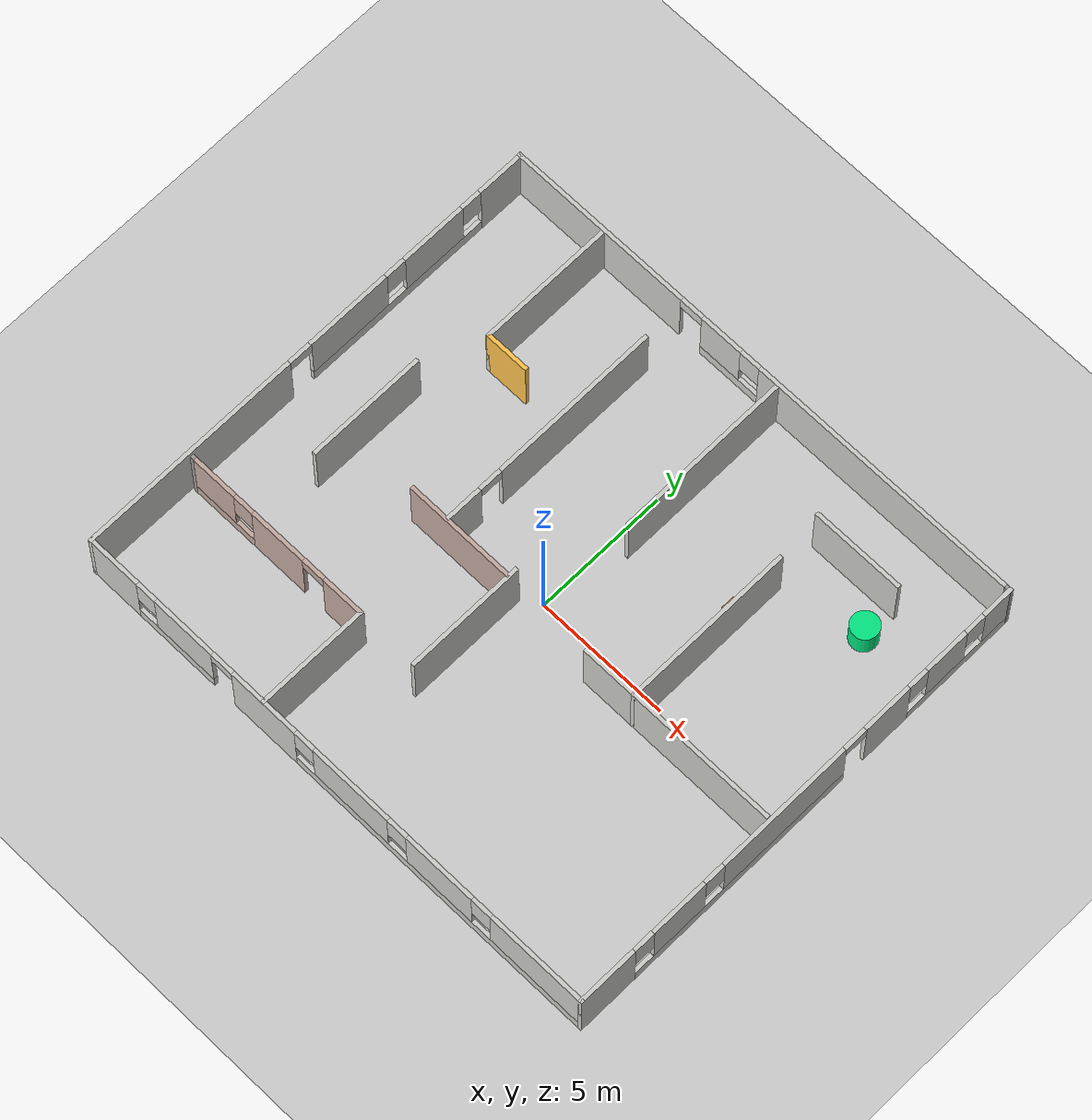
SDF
<sdf version="1.7">
 <world name="default">
  <model name="ground_plane">
   <static>1</static>
   <link name="link">
    <collision name="collision">
     <geometry><plane><normal>0 0 1</normal><size>100 100</size></plane></geometry>
     <surface><friction><ode><mu>100</mu><mu2>50</mu2></ode></friction></surface>
    </collision>
    <visual name="visual">
     <cast_shadows>0</cast_shadows>
     <geometry><plane><normal>0 0 1</normal><size>100 100</size></plane></geometry>
     <material>
      <script><uri>file://media/materials/scripts/gazebo.material</uri><name>Gazebo/Grey</name></script>
     </material>
    </visual>
   </link>
  </model>
  <model name="training_area">
   <pose>-0.09596 0.33644 0 0 -0 0</pose>
   <link name="Wall_11">
    <collision name="Wall_11_Collision">
     <geometry><box><size>4.25 0.15 2.5</size></box></geometry>
     <pose>0 0 1.25 0 -0 0</pose>
    </collision>
    <visual name="Wall_11_Visual">
     <pose>0 0 1.25 0 -0 0</pose>
     <geometry><box><size>4.25 0.15 2.5</size></box></geometry>
     <material>
      <script><uri>file://media/materials/scripts/gazebo.material</uri><name>Gazebo/CeilingTiled</name></script>
      <ambient>0.760784 0.662745 0.627451 1</ambient>
     </material>
     <meta><layer>0</layer></meta>
    </visual>
    <pose>-2.97768 -7.23047 0 0 0 -1.5708</pose>
   </link>
   <link name="Wall_13">
    <pose>-6.65268 -5.18047 0 0 -0 3.14159</pose>
    <visual name="Wall_13_Visual_0">
     <pose>-2.92229 0 1.25 0 -0 0</pose>
     <geometry><box><size>1.65542 0.15 2.5</size></box></geometry>
     <material>
      <script><uri>file://media/materials/scripts/gazebo.material</uri><name>Gazebo/Grey</name></script>
      <ambient>0.760784 0.662745 0.627451 1</ambient>
     </material>
     <meta><layer>0</layer></meta>
    </visual>
    <collision name="Wall_13_Collision_0">
     <geometry><box><size>1.65542 0.15 2.5</size></box></geometry>
     <pose>-2.92229 0 1.25 0 -0 0</pose>
    </collision>
    <visual name="Wall_13_Visual_1">
     <pose>-0.081383 0 1.25 0 -0 0</pose>
     <geometry><box><size>2.22639 0.15 2.5</size></box></geometry>
     <material>
      <script><uri>file://media/materials/scripts/gazebo.material</uri><name>Gazebo/Grey</name></script>
      <ambient>0.760784 0.662745 0.627451 1</ambient>
     </material>
     <meta><layer>0</layer></meta>
    </visual>
    <collision name="Wall_13_Collision_1">
     <geometry><box><size>2.22639 0.15 2.5</size></box></geometry>
     <pose>-0.081383 0 1.25 0 -0 0</pose>
    </collision>
    <visual name="Wall_13_Visual_2">
     <pose>2.39091 0 0.25 0 -0 0</pose>
     <geometry><box><size>2.71819 0.15 0.5</size></box></geometry>
     <material>
      <script><uri>file://media/materials/scripts/gazebo.material</uri><name>Gazebo/Grey</name></script>
      <ambient>0.760784 0.662745 0.627451 1</ambient>
     </material>
     <meta><layer>0</layer></meta>
    </visual>
    <collision name="Wall_13_Collision_2">
     <geometry><box><size>2.71819 0.15 0.5</size></box></geometry>
     <pose>2.39091 0 0.25 0 -0 0</pose>
    </collision>
    <visual name="Wall_13_Visual_3">
     <pose>2.79091 0 1.5 0 -0 0</pose>
     <geometry><box><size>1.91819 0.15 2</size></box></geometry>
     <material>
      <script><uri>file://media/materials/scripts/gazebo.material</uri><name>Gazebo/Grey</name></script>
      <ambient>0.760784 0.662745 0.627451 1</ambient>
     </material>
     <meta><layer>0</layer></meta>
    </visual>
    <collision name="Wall_13_Collision_3">
     <geometry><box><size>1.91819 0.15 2</size></box></geometry>
     <pose>2.79091 0 1.5 0 -0 0</pose>
    </collision>
    <visual name="Wall_13_Visual_4">
     <pose>1.43181 0 1.9 0 -0 0</pose>
     <geometry><box><size>0.8 0.15 1.2</size></box></geometry>
     <material>
      <script><uri>file://media/materials/scripts/gazebo.material</uri><name>Gazebo/Grey</name></script>
      <ambient>0.760784 0.662745 0.627451 1</ambient>
     </material>
     <meta><layer>0</layer></meta>
    </visual>
    <collision name="Wall_13_Collision_4">
     <geometry><box><size>0.8 0.15 1.2</size></box></geometry>
     <pose>1.43181 0 1.9 0 -0 0</pose>
    </collision>
    <visual name="Wall_13_Visual_5">
     <pose>-1.64458 0 2.25 0 -0 0</pose>
     <geometry><box><size>0.9 0.15 0.5</size></box></geometry>
     <material>
      <script><uri>file://media/materials/scripts/gazebo.material</uri><name>Gazebo/Grey</name></script>
      <ambient>0.760784 0.662745 0.627451 1</ambient>
     </material>
     <meta><layer>0</layer></meta>
    </visual>
    <collision name="Wall_13_Collision_5">
     <geometry><box><size>0.9 0.15 0.5</size></box></geometry>
     <pose>-1.64458 0 2.25 0 -0 0</pose>
    </collision>
   </link>
   <link name="Wall_14">
    <collision name="Wall_14_Collision">
     <geometry><box><size>0.15 0.15 2.5</size></box></geometry>
     <pose>0 0 1.25 0 -0 0</pose>
    </collision>
    <visual name="Wall_14_Visual">
     <pose>0 0 1.25 0 -0 0</pose>
     <geometry><box><size>0.15 0.15 2.5</size></box></geometry>
     <material>
      <script><uri>file://media/materials/scripts/gazebo.material</uri><name>Gazebo/Grey</name></script>
      <ambient>1 1 1 1</ambient>
     </material>
     <meta><layer>0</layer></meta>
    </visual>
    <pose>-10.3277 -5.18047 0 0 -0 0</pose>
   </link>
   <link name="Wall_16">
    <collision name="Wall_16_Collision">
     <geometry><box><size>4.25 0.15 2.5</size></box></geometry>
     <pose>0 0 1.25 0 -0 0</pose>
    </collision>
    <visual name="Wall_16_Visual">
     <pose>0 0 1.25 0 -0 0</pose>
     <geometry><box><size>4.25 0.15 2.5</size></box></geometry>
     <material>
      <script><uri>file://media/materials/scripts/gazebo.material</uri><name>Gazebo/Grey</name></script>
      <ambient>0.760784 0.662745 0.627451 1</ambient>
     </material>
     <meta><layer>0</layer></meta>
    </visual>
    <pose>-2.72495 -1.14348 0 0 -0 0</pose>
   </link>
   <link name="Wall_18">
    <pose>-3.31028 3.23789 0 0 -0 1.5708</pose>
    <visual name="Wall_18_Visual_0">
     <pose>-3.66742 0 1.25 0 -0 0</pose>
     <geometry><box><size>1.41515 0.15 2.5</size></box></geometry>
     <material>
      <script><uri>file://media/materials/scripts/gazebo.material</uri><name>Gazebo/CeilingTiled</name></script>
      <ambient>0.760784 0.662745 0.627451 1</ambient>
     </material>
     <meta><layer>0</layer></meta>
    </visual>
    <collision name="Wall_18_Collision_0">
     <geometry><box><size>1.41515 0.15 2.5</size></box></geometry>
     <pose>-3.66742 0 1.25 0 -0 0</pose>
    </collision>
    <visual name="Wall_18_Visual_1">
     <pose>1.15758 0 1.25 0 -0 0</pose>
     <geometry><box><size>6.43485 0.15 2.5</size></box></geometry>
     <material>
      <script><uri>file://media/materials/scripts/gazebo.material</uri><name>Gazebo/CeilingTiled</name></script>
      <ambient>0.760784 0.662745 0.627451 1</ambient>
     </material>
     <meta><layer>0</layer></meta>
    </visual>
    <collision name="Wall_18_Collision_1">
     <geometry><box><size>6.43485 0.15 2.5</size></box></geometry>
     <pose>1.15758 0 1.25 0 -0 0</pose>
    </collision>
    <visual name="Wall_18_Visual_2">
     <pose>-2.50985 0 2.25 0 -0 0</pose>
     <geometry><box><size>0.9 0.15 0.5</size></box></geometry>
     <material>
      <script><uri>file://media/materials/scripts/gazebo.material</uri><name>Gazebo/CeilingTiled</name></script>
      <ambient>0.760784 0.662745 0.627451 1</ambient>
     </material>
     <meta><layer>0</layer></meta>
    </visual>
    <collision name="Wall_18_Collision_2">
     <geometry><box><size>0.9 0.15 0.5</size></box></geometry>
     <pose>-2.50985 0 2.25 0 -0 0</pose>
    </collision>
   </link>
   <link name="Wall_20">
    <collision name="Wall_20_Collision">
     <geometry><box><size>4.5 0.15 2.5</size></box></geometry>
     <pose>0 0 1.25 0 -0 0</pose>
    </collision>
    <visual name="Wall_20_Visual">
     <pose>0 0 1.25 0 -0 0</pose>
     <geometry><box><size>4.5 0.15 2.5</size></box></geometry>
     <material>
      <script><uri>file://media/materials/scripts/gazebo.material</uri><name>Gazebo/CeilingTiled</name></script>
      <ambient>0.996078 0.47451 0.0196078 1</ambient>
     </material>
     <meta><layer>0</layer></meta>
    </visual>
    <pose>-0.625048 -3.03701 0 0 -0 1.5708</pose>
   </link>
   <link name="Wall_22">
    <collision name="Wall_22_Collision">
     <geometry><box><size>5.25 0.15 2.5</size></box></geometry>
     <pose>0 0 1.25 0 -0 0</pose>
    </collision>
    <visual name="Wall_22_Visual">
     <pose>0 0 1.25 0 -0 0</pose>
     <geometry><box><size>5.25 0.15 2.5</size></box></geometry>
     <material>
      <script><uri>file://media/materials/scripts/gazebo.material</uri><name>Gazebo/CeilingTiled</name></script>
      <ambient>1 0.764706 0.305882 1</ambient>
     </material>
     <meta><layer>0</layer></meta>
    </visual>
    <pose>-6.80922 6.72196 0 0 0 -1.5708</pose>
   </link>
   <link name="Wall_23">
    <collision name="Wall_23_Collision">
     <geometry><box><size>1.75 0.15 2.5</size></box></geometry>
     <pose>0 0 1.25 0 -0 0</pose>
    </collision>
    <visual name="Wall_23_Visual">
     <pose>0 0 1.25 0 -0 0</pose>
     <geometry><box><size>1.75 0.15 2.5</size></box></geometry>
     <material>
      <script><uri>file://media/materials/scripts/gazebo.material</uri><name>Gazebo/Grey</name></script>
      <ambient>1 0.764706 0.305882 1</ambient>
     </material>
     <meta><layer>0</layer></meta>
    </visual>
    <pose>-6.00922 4.17196 0 0 -0 0</pose>
   </link>
   <link name="Wall_26">
    <collision name="Wall_26_Collision">
     <geometry><box><size>4.5 0.15 2.5</size></box></geometry>
     <pose>0 0 1.25 0 -0 0</pose>
    </collision>
    <visual name="Wall_26_Visual">
     <pose>0 0 1.25 0 -0 0</pose>
     <geometry><box><size>4.5 0.15 2.5</size></box></geometry>
     <material>
      <script><uri>file://media/materials/scripts/gazebo.material</uri><name>Gazebo/CeilingTiled</name></script>
      <ambient>1 0.764706 0.305882 1</ambient>
     </material>
     <meta><layer>0</layer></meta>
    </visual>
    <pose>-7.78566 -0.226392 0 0 0 -1.5708</pose>
   </link>
   <link name="Wall_28">
    <collision name="Wall_28_Collision">
     <geometry><box><size>6.75 0.15 2.5</size></box></geometry>
     <pose>0 0 1.25 0 -0 0</pose>
    </collision>
    <visual name="Wall_28_Visual">
     <pose>0 0 1.25 0 -0 0</pose>
     <geometry><box><size>6.75 0.15 2.5</size></box></geometry>
     <material>
      <script><uri>file://media/materials/scripts/gazebo.material</uri><name>Gazebo/CeilingTiled</name></script>
      <ambient>0.435294 0.796078 0.67451 1</ambient>
     </material>
     <meta><layer>0</layer></meta>
    </visual>
    <pose>0.758252 5.97196 0 0 0 -1.5708</pose>
   </link>
   <link name="Wall_3">
    <pose>-0.13 9.3 0 0 -0 3.14159</pose>
    <visual name="Wall_3_Visual_0">
     <pose>-5.29204 0 1.25 0 -0 0</pose>
     <geometry><box><size>10.4159 0.15 2.5</size></box></geometry>
     <material>
      <script><uri>file://media/materials/scripts/gazebo.material</uri><name>Gazebo/CeilingTiled</name></script>
      <ambient>1 0.764706 0.305882 1</ambient>
     </material>
     <meta><layer>0</layer></meta>
    </visual>
    <collision name="Wall_3_Collision_0">
     <geometry><box><size>10.4159 0.15 2.5</size></box></geometry>
     <pose>-5.29204 0 1.25 0 -0 0</pose>
    </collision>
    <visual name="Wall_3_Visual_1">
     <pose>6.89421 0 1.25 0 -0 0</pose>
     <geometry><box><size>7.21159 0.15 2.5</size></box></geometry>
     <material>
      <script><uri>file://media/materials/scripts/gazebo.material</uri><name>Gazebo/CeilingTiled</name></script>
      <ambient>1 0.764706 0.305882 1</ambient>
     </material>
     <meta><layer>0</layer></meta>
    </visual>
    <collision name="Wall_3_Collision_1">
     <geometry><box><size>7.21159 0.15 2.5</size></box></geometry>
     <pose>6.89421 0 1.25 0 -0 0</pose>
    </collision>
    <visual name="Wall_3_Visual_2">
     <pose>1.15217 0 0.25 0 -0 0</pose>
     <geometry><box><size>2.47249 0.15 0.5</size></box></geometry>
     <material>
      <script><uri>file://media/materials/scripts/gazebo.material</uri><name>Gazebo/CeilingTiled</name></script>
      <ambient>1 0.764706 0.305882 1</ambient>
     </material>
     <meta><layer>0</layer></meta>
    </visual>
    <collision name="Wall_3_Collision_2">
     <geometry><box><size>2.47249 0.15 0.5</size></box></geometry>
     <pose>1.15217 0 0.25 0 -0 0</pose>
    </collision>
    <visual name="Wall_3_Visual_3">
     <pose>1.55217 0 1.5 0 -0 0</pose>
     <geometry><box><size>1.67249 0.15 2</size></box></geometry>
     <material>
      <script><uri>file://media/materials/scripts/gazebo.material</uri><name>Gazebo/CeilingTiled</name></script>
      <ambient>1 0.764706 0.305882 1</ambient>
     </material>
     <meta><layer>0</layer></meta>
    </visual>
    <collision name="Wall_3_Collision_3">
     <geometry><box><size>1.67249 0.15 2</size></box></geometry>
     <pose>1.55217 0 1.5 0 -0 0</pose>
    </collision>
    <visual name="Wall_3_Visual_4">
     <pose>0.315921 0 1.9 0 -0 0</pose>
     <geometry><box><size>0.8 0.15 1.2</size></box></geometry>
     <material>
      <script><uri>file://media/materials/scripts/gazebo.material</uri><name>Gazebo/CeilingTiled</name></script>
      <ambient>1 0.764706 0.305882 1</ambient>
     </material>
     <meta><layer>0</layer></meta>
    </visual>
    <collision name="Wall_3_Collision_4">
     <geometry><box><size>0.8 0.15 1.2</size></box></geometry>
     <pose>0.315921 0 1.9 0 -0 0</pose>
    </collision>
    <visual name="Wall_3_Visual_5">
     <pose>2.83841 0 2.25 0 -0 0</pose>
     <geometry><box><size>0.9 0.15 0.5</size></box></geometry>
     <material>
      <script><uri>file://media/materials/scripts/gazebo.material</uri><name>Gazebo/CeilingTiled</name></script>
      <ambient>1 0.764706 0.305882 1</ambient>
     </material>
     <meta><layer>0</layer></meta>
    </visual>
    <collision name="Wall_3_Collision_5">
     <geometry><box><size>0.9 0.15 0.5</size></box></geometry>
     <pose>2.83841 0 2.25 0 -0 0</pose>
    </collision>
   </link>
   <link name="Wall_30">
    <collision name="Wall_30_Collision">
     <geometry><box><size>3.5 0.15 2.5</size></box></geometry>
     <pose>0 0 1.25 0 -0 0</pose>
    </collision>
    <visual name="Wall_30_Visual">
     <pose>0 0 1.25 0 -0 0</pose>
     <geometry><box><size>3.5 0.15 2.5</size></box></geometry>
     <material>
      <script><uri>file://media/materials/scripts/gazebo.material</uri><name>Gazebo/CeilingTiled</name></script>
      <ambient>0.435294 0.796078 0.67451 1</ambient>
     </material>
     <meta><layer>0</layer></meta>
    </visual>
    <pose>6.33904 6.99359 0 0 -0 0</pose>
   </link>
   <link name="Wall_32">
    <collision name="Wall_32_Collision">
     <geometry><box><size>6.5 0.15 2.5</size></box></geometry>
     <pose>0 0 1.25 0 -0 0</pose>
    </collision>
    <visual name="Wall_32_Visual">
     <pose>0 0 1.25 0 -0 0</pose>
     <geometry><box><size>6.5 0.15 2.5</size></box></geometry>
     <material>
      <script><uri>file://media/materials/scripts/gazebo.material</uri><name>Gazebo/CeilingTiled</name></script>
      <ambient>0.435294 0.796078 0.67451 1</ambient>
     </material>
     <meta><layer>0</layer></meta>
    </visual>
    <pose>4.82678 1.94706 0 0 0 -1.5708</pose>
   </link>
   <link name="Wall_34">
    <collision name="Wall_34_Collision">
     <geometry><box><size>7.75 0.15 2.5</size></box></geometry>
     <pose>0 0 1.25 0 -0 0</pose>
    </collision>
    <visual name="Wall_34_Visual">
     <pose>0 0 1.25 0 -0 0</pose>
     <geometry><box><size>7.75 0.15 2.5</size></box></geometry>
     <material>
      <script><uri>file://media/materials/scripts/gazebo.material</uri><name>Gazebo/CeilingTiled</name></script>
      <ambient>0.996078 0.47451 0.0196078 1</ambient>
     </material>
     <meta><layer>0</layer></meta>
    </visual>
    <pose>6.59252 -1.22485 0 0 -0 0</pose>
   </link>
   <link name="Wall_4">
    <collision name="Wall_4_Collision">
     <geometry><box><size>0.16 0.15 2.5</size></box></geometry>
     <pose>0 0 1.25 0 -0 0</pose>
    </collision>
    <visual name="Wall_4_Visual">
     <pose>0 0 1.25 0 -0 0</pose>
     <geometry><box><size>0.16 0.15 2.5</size></box></geometry>
     <material>
      <script><uri>file://media/materials/scripts/gazebo.material</uri><name>Gazebo/Grey</name></script>
      <ambient>1 1 1 1</ambient>
     </material>
     <meta><layer>0</layer></meta>
    </visual>
    <pose>-10.55 9.3 0 0 -0 0</pose>
   </link>
   <link name="Wall_5">
    <pose>-10.545 0 0 0 0 -1.5708</pose>
    <visual name="Wall_5_Visual_0">
     <pose>-8.42498 0 1.25 0 -0 0</pose>
     <geometry><box><size>1.90004 0.15 2.5</size></box></geometry>
     <material>
      <script><uri>file://media/materials/scripts/gazebo.material</uri><name>Gazebo/CeilingTiled</name></script>
      <ambient>1 0.764706 0.305882 1</ambient>
     </material>
     <meta><layer>0</layer></meta>
    </visual>
    <collision name="Wall_5_Collision_0">
     <geometry><box><size>1.90004 0.15 2.5</size></box></geometry>
     <pose>-8.42498 0 1.25 0 -0 0</pose>
    </collision>
    <visual name="Wall_5_Visual_1">
     <pose>5.11807 0 1.25 0 -0 0</pose>
     <geometry><box><size>8.51386 0.15 2.5</size></box></geometry>
     <material>
      <script><uri>file://media/materials/scripts/gazebo.material</uri><name>Gazebo/CeilingTiled</name></script>
      <ambient>1 0.764706 0.305882 1</ambient>
     </material>
     <meta><layer>0</layer></meta>
    </visual>
    <collision name="Wall_5_Collision_1">
     <geometry><box><size>8.51386 0.15 2.5</size></box></geometry>
     <pose>5.11807 0 1.25 0 -0 0</pose>
    </collision>
    <visual name="Wall_5_Visual_2">
     <pose>-3.75691 0 0.25 0 -0 0</pose>
     <geometry><box><size>7.4361 0.15 0.5</size></box></geometry>
     <material>
      <script><uri>file://media/materials/scripts/gazebo.material</uri><name>Gazebo/CeilingTiled</name></script>
      <ambient>1 0.764706 0.305882 1</ambient>
     </material>
     <meta><layer>0</layer></meta>
    </visual>
    <collision name="Wall_5_Collision_2">
     <geometry><box><size>7.4361 0.15 0.5</size></box></geometry>
     <pose>-3.75691 0 0.25 0 -0 0</pose>
    </collision>
    <visual name="Wall_5_Visual_3">
     <pose>-5.40686 0 1.5 0 -0 0</pose>
     <geometry><box><size>2.5362 0.15 2</size></box></geometry>
     <material>
      <script><uri>file://media/materials/scripts/gazebo.material</uri><name>Gazebo/CeilingTiled</name></script>
      <ambient>1 0.764706 0.305882 1</ambient>
     </material>
     <meta><layer>0</layer></meta>
    </visual>
    <collision name="Wall_5_Collision_3">
     <geometry><box><size>2.5362 0.15 2</size></box></geometry>
     <pose>-5.40686 0 1.5 0 -0 0</pose>
    </collision>
    <visual name="Wall_5_Visual_4">
     <pose>-1.68881 0 1.5 0 -0 0</pose>
     <geometry><box><size>3.2999 0.15 2</size></box></geometry>
     <material>
      <script><uri>file://media/materials/scripts/gazebo.material</uri><name>Gazebo/CeilingTiled</name></script>
      <ambient>1 0.764706 0.305882 1</ambient>
     </material>
     <meta><layer>0</layer></meta>
    </visual>
    <collision name="Wall_5_Collision_4">
     <geometry><box><size>3.2999 0.15 2</size></box></geometry>
     <pose>-1.68881 0 1.5 0 -0 0</pose>
    </collision>
    <visual name="Wall_5_Visual_5">
     <pose>-7.07496 0 1.9 0 -0 0</pose>
     <geometry><box><size>0.8 0.15 1.2</size></box></geometry>
     <material>
      <script><uri>file://media/materials/scripts/gazebo.material</uri><name>Gazebo/CeilingTiled</name></script>
      <ambient>1 0.764706 0.305882 1</ambient>
     </material>
     <meta><layer>0</layer></meta>
    </visual>
    <collision name="Wall_5_Collision_5">
     <geometry><box><size>0.8 0.15 1.2</size></box></geometry>
     <pose>-7.07496 0 1.9 0 -0 0</pose>
    </collision>
    <visual name="Wall_5_Visual_6">
     <pose>-3.73876 0 1.9 0 -0 0</pose>
     <geometry><box><size>0.8 0.15 1.2</size></box></geometry>
     <material>
      <script><uri>file://media/materials/scripts/gazebo.material</uri><name>Gazebo/CeilingTiled</name></script>
      <ambient>1 0.764706 0.305882 1</ambient>
     </material>
     <meta><layer>0</layer></meta>
    </visual>
    <collision name="Wall_5_Collision_6">
     <geometry><box><size>0.8 0.15 1.2</size></box></geometry>
     <pose>-3.73876 0 1.9 0 -0 0</pose>
    </collision>
    <visual name="Wall_5_Visual_7">
     <pose>0.41114 0 2.25 0 -0 0</pose>
     <geometry><box><size>0.9 0.15 0.5</size></box></geometry>
     <material>
      <script><uri>file://media/materials/scripts/gazebo.material</uri><name>Gazebo/CeilingTiled</name></script>
      <ambient>1 0.764706 0.305882 1</ambient>
     </material>
     <meta><layer>0</layer></meta>
    </visual>
    <collision name="Wall_5_Collision_7">
     <geometry><box><size>0.9 0.15 0.5</size></box></geometry>
     <pose>0.41114 0 2.25 0 -0 0</pose>
    </collision>
   </link>
   <link name="Wall_6">
    <pose>0.005 -9.3 0 0 -0 0</pose>
    <visual name="Wall_6_Visual_0">
     <pose>-9.56238 0 1.25 0 -0 0</pose>
     <geometry><box><size>2.12524 0.15 2.5</size></box></geometry>
     <material>
      <script><uri>file://media/materials/scripts/gazebo.material</uri><name>Gazebo/CeilingTiled</name></script>
      <ambient>1 0.764706 0.305882 1</ambient>
     </material>
     <meta><layer>0</layer></meta>
    </visual>
    <collision name="Wall_6_Collision_0">
     <geometry><box><size>2.12524 0.15 2.5</size></box></geometry>
     <pose>-9.56238 0 1.25 0 -0 0</pose>
    </collision>
    <visual name="Wall_6_Visual_1">
     <pose>-2.94841 0 1.25 0 -0 0</pose>
     <geometry><box><size>2.73031 0.15 2.5</size></box></geometry>
     <material>
      <script><uri>file://media/materials/scripts/gazebo.material</uri><name>Gazebo/CeilingTiled</name></script>
      <ambient>1 0.764706 0.305882 1</ambient>
     </material>
     <meta><layer>0</layer></meta>
    </visual>
    <collision name="Wall_6_Collision_1">
     <geometry><box><size>2.73031 0.15 2.5</size></box></geometry>
     <pose>-2.94841 0 1.25 0 -0 0</pose>
    </collision>
    <visual name="Wall_6_Visual_2">
     <pose>-6.85666 0 0.25 0 -0 0</pose>
     <geometry><box><size>3.2862 0.15 0.5</size></box></geometry>
     <material>
      <script><uri>file://media/materials/scripts/gazebo.material</uri><name>Gazebo/CeilingTiled</name></script>
      <ambient>1 0.764706 0.305882 1</ambient>
     </material>
     <meta><layer>0</layer></meta>
    </visual>
    <collision name="Wall_6_Collision_2">
     <geometry><box><size>3.2862 0.15 0.5</size></box></geometry>
     <pose>-6.85666 0 0.25 0 -0 0</pose>
    </collision>
    <visual name="Wall_6_Visual_3">
     <pose>4.52087 0 0.25 0 -0 0</pose>
     <geometry><box><size>12.2083 0.15 0.5</size></box></geometry>
     <material>
      <script><uri>file://media/materials/scripts/gazebo.material</uri><name>Gazebo/CeilingTiled</name></script>
      <ambient>1 0.764706 0.305882 1</ambient>
     </material>
     <meta><layer>0</layer></meta>
    </visual>
    <collision name="Wall_6_Collision_3">
     <geometry><box><size>12.2083 0.15 0.5</size></box></geometry>
     <pose>4.52087 0 0.25 0 -0 0</pose>
    </collision>
    <visual name="Wall_6_Visual_4">
     <pose>-6.45666 0 1.5 0 -0 0</pose>
     <geometry><box><size>2.4862 0.15 2</size></box></geometry>
     <material>
      <script><uri>file://media/materials/scripts/gazebo.material</uri><name>Gazebo/CeilingTiled</name></script>
      <ambient>1 0.764706 0.305882 1</ambient>
     </material>
     <meta><layer>0</layer></meta>
    </visual>
    <collision name="Wall_6_Collision_4">
     <geometry><box><size>2.4862 0.15 2</size></box></geometry>
     <pose>-6.45666 0 1.5 0 -0 0</pose>
    </collision>
    <visual name="Wall_6_Visual_5">
     <pose>-6.45666 0 1.5 0 -0 0</pose>
     <geometry><box><size>2.4862 0.15 2</size></box></geometry>
     <material>
      <script><uri>file://media/materials/scripts/gazebo.material</uri><name>Gazebo/CeilingTiled</name></script>
      <ambient>1 0.764706 0.305882 1</ambient>
     </material>
     <meta><layer>0</layer></meta>
    </visual>
    <collision name="Wall_6_Collision_5">
     <geometry><box><size>2.4862 0.15 2</size></box></geometry>
     <pose>-6.45666 0 1.5 0 -0 0</pose>
    </collision>
    <visual name="Wall_6_Visual_6">
     <pose>0.810323 0 1.5 0 -0 0</pose>
     <geometry><box><size>3.18716 0.15 2</size></box></geometry>
     <material>
      <script><uri>file://media/materials/scripts/gazebo.material</uri><name>Gazebo/CeilingTiled</name></script>
      <ambient>1 0.764706 0.305882 1</ambient>
     </material>
     <meta><layer>0</layer></meta>
    </visual>
    <collision name="Wall_6_Collision_6">
     <geometry><box><size>3.18716 0.15 2</size></box></geometry>
     <pose>0.810323 0 1.5 0 -0 0</pose>
    </collision>
    <visual name="Wall_6_Visual_7">
     <pose>4.59406 0 1.5 0 -0 0</pose>
     <geometry><box><size>2.78031 0.15 2</size></box></geometry>
     <material>
      <script><uri>file://media/materials/scripts/gazebo.material</uri><name>Gazebo/CeilingTiled</name></script>
      <ambient>1 0.764706 0.305882 1</ambient>
     </material>
     <meta><layer>0</layer></meta>
    </visual>
    <collision name="Wall_6_Collision_7">
     <geometry><box><size>2.78031 0.15 2</size></box></geometry>
     <pose>4.59406 0 1.5 0 -0 0</pose>
    </collision>
    <visual name="Wall_6_Visual_8">
     <pose>8.70461 0 1.5 0 -0 0</pose>
     <geometry><box><size>3.84079 0.15 2</size></box></geometry>
     <material>
      <script><uri>file://media/materials/scripts/gazebo.material</uri><name>Gazebo/CeilingTiled</name></script>
      <ambient>1 0.764706 0.305882 1</ambient>
     </material>
     <meta><layer>0</layer></meta>
    </visual>
    <collision name="Wall_6_Collision_8">
     <geometry><box><size>3.84079 0.15 2</size></box></geometry>
     <pose>8.70461 0 1.5 0 -0 0</pose>
    </collision>
    <visual name="Wall_6_Visual_9">
     <pose>-8.09976 0 1.9 0 -0 0</pose>
     <geometry><box><size>0.8 0.15 1.2</size></box></geometry>
     <material>
      <script><uri>file://media/materials/scripts/gazebo.material</uri><name>Gazebo/CeilingTiled</name></script>
      <ambient>1 0.764706 0.305882 1</ambient>
     </material>
     <meta><layer>0</layer></meta>
    </visual>
    <collision name="Wall_6_Collision_9">
     <geometry><box><size>0.8 0.15 1.2</size></box></geometry>
     <pose>-8.09976 0 1.9 0 -0 0</pose>
    </collision>
    <visual name="Wall_6_Visual_10">
     <pose>-1.18326 0 1.9 0 -0 0</pose>
     <geometry><box><size>0.8 0.15 1.2</size></box></geometry>
     <material>
      <script><uri>file://media/materials/scripts/gazebo.material</uri><name>Gazebo/CeilingTiled</name></script>
      <ambient>1 0.764706 0.305882 1</ambient>
     </material>
     <meta><layer>0</layer></meta>
    </visual>
    <collision name="Wall_6_Collision_10">
     <geometry><box><size>0.8 0.15 1.2</size></box></geometry>
     <pose>-1.18326 0 1.9 0 -0 0</pose>
    </collision>
    <visual name="Wall_6_Visual_11">
     <pose>2.8039 0 1.9 0 -0 0</pose>
     <geometry><box><size>0.8 0.15 1.2</size></box></geometry>
     <material>
      <script><uri>file://media/materials/scripts/gazebo.material</uri><name>Gazebo/CeilingTiled</name></script>
      <ambient>1 0.764706 0.305882 1</ambient>
     </material>
     <meta><layer>0</layer></meta>
    </visual>
    <collision name="Wall_6_Collision_11">
     <geometry><box><size>0.8 0.15 1.2</size></box></geometry>
     <pose>2.8039 0 1.9 0 -0 0</pose>
    </collision>
    <visual name="Wall_6_Visual_12">
     <pose>6.38421 0 1.9 0 -0 0</pose>
     <geometry><box><size>0.8 0.15 1.2</size></box></geometry>
     <material>
      <script><uri>file://media/materials/scripts/gazebo.material</uri><name>Gazebo/CeilingTiled</name></script>
      <ambient>1 0.764706 0.305882 1</ambient>
     </material>
     <meta><layer>0</layer></meta>
    </visual>
    <collision name="Wall_6_Collision_12">
     <geometry><box><size>0.8 0.15 1.2</size></box></geometry>
     <pose>6.38421 0 1.9 0 -0 0</pose>
    </collision>
    <visual name="Wall_6_Visual_13">
     <pose>-4.76356 0 2.25 0 -0 0</pose>
     <geometry><box><size>0.9 0.15 0.5</size></box></geometry>
     <material>
      <script><uri>file://media/materials/scripts/gazebo.material</uri><name>Gazebo/CeilingTiled</name></script>
      <ambient>1 0.764706 0.305882 1</ambient>
     </material>
     <meta><layer>0</layer></meta>
    </visual>
    <collision name="Wall_6_Collision_13">
     <geometry><box><size>0.9 0.15 0.5</size></box></geometry>
     <pose>-4.76356 0 2.25 0 -0 0</pose>
    </collision>
    <visual name="Wall_6_Visual_14">
     <pose>-4.76356 0 2.25 0 -0 0</pose>
     <geometry><box><size>0.9 0.15 0.5</size></box></geometry>
     <material>
      <script><uri>file://media/materials/scripts/gazebo.material</uri><name>Gazebo/CeilingTiled</name></script>
      <ambient>1 0.764706 0.305882 1</ambient>
     </material>
     <meta><layer>0</layer></meta>
    </visual>
    <collision name="Wall_6_Collision_14">
     <geometry><box><size>0.9 0.15 0.5</size></box></geometry>
     <pose>-4.76356 0 2.25 0 -0 0</pose>
    </collision>
   </link>
   <link name="Wall_7">
    <pose>10.555 0 0 0 -0 1.5708</pose>
    <visual name="Wall_7_Visual_0">
     <pose>-8.22584 0 1.25 0 -0 0</pose>
     <geometry><box><size>2.29832 0.15 2.5</size></box></geometry>
     <material>
      <script><uri>file://media/materials/scripts/gazebo.material</uri><name>Gazebo/CeilingTiled</name></script>
      <ambient>1 0.764706 0.305882 1</ambient>
     </material>
     <meta><layer>0</layer></meta>
    </visual>
    <collision name="Wall_7_Collision_0">
     <geometry><box><size>2.29832 0.15 2.5</size></box></geometry>
     <pose>-8.22584 0 1.25 0 -0 0</pose>
    </collision>
    <visual name="Wall_7_Visual_1">
     <pose>3.84513 0 1.25 0 -0 0</pose>
     <geometry><box><size>1.9166 0.15 2.5</size></box></geometry>
     <material>
      <script><uri>file://media/materials/scripts/gazebo.material</uri><name>Gazebo/CeilingTiled</name></script>
      <ambient>1 0.764706 0.305882 1</ambient>
     </material>
     <meta><layer>0</layer></meta>
    </visual>
    <collision name="Wall_7_Collision_1">
     <geometry><box><size>1.9166 0.15 2.5</size></box></geometry>
     <pose>3.84513 0 1.25 0 -0 0</pose>
    </collision>
    <visual name="Wall_7_Visual_2">
     <pose>-2.54492 0 0.25 0 -0 0</pose>
     <geometry><box><size>9.06351 0.15 0.5</size></box></geometry>
     <material>
      <script><uri>file://media/materials/scripts/gazebo.material</uri><name>Gazebo/CeilingTiled</name></script>
      <ambient>1 0.764706 0.305882 1</ambient>
     </material>
     <meta><layer>0</layer></meta>
    </visual>
    <collision name="Wall_7_Collision_2">
     <geometry><box><size>9.06351 0.15 0.5</size></box></geometry>
     <pose>-2.54492 0 0.25 0 -0 0</pose>
    </collision>
    <visual name="Wall_7_Visual_3">
     <pose>7.08922 0 0.25 0 -0 0</pose>
     <geometry><box><size>4.57157 0.15 0.5</size></box></geometry>
     <material>
      <script><uri>file://media/materials/scripts/gazebo.material</uri><name>Gazebo/CeilingTiled</name></script>
      <ambient>1 0.764706 0.305882 1</ambient>
     </material>
     <meta><layer>0</layer></meta>
    </visual>
    <collision name="Wall_7_Collision_3">
     <geometry><box><size>4.57157 0.15 0.5</size></box></geometry>
     <pose>7.08922 0 0.25 0 -0 0</pose>
    </collision>
    <visual name="Wall_7_Visual_4">
     <pose>-5.17132 0 1.5 0 -0 0</pose>
     <geometry><box><size>2.21071 0.15 2</size></box></geometry>
     <material>
      <script><uri>file://media/materials/scripts/gazebo.material</uri><name>Gazebo/CeilingTiled</name></script>
      <ambient>1 0.764706 0.305882 1</ambient>
     </material>
     <meta><layer>0</layer></meta>
    </visual>
    <collision name="Wall_7_Collision_4">
     <geometry><box><size>2.21071 0.15 2</size></box></geometry>
     <pose>-5.17132 0 1.5 0 -0 0</pose>
    </collision>
    <visual name="Wall_7_Visual_5">
     <pose>-0.639567 0 1.5 0 -0 0</pose>
     <geometry><box><size>5.2528 0.15 2</size></box></geometry>
     <material>
      <script><uri>file://media/materials/scripts/gazebo.material</uri><name>Gazebo/CeilingTiled</name></script>
      <ambient>1 0.764706 0.305882 1</ambient>
     </material>
     <meta><layer>0</layer></meta>
    </visual>
    <collision name="Wall_7_Collision_5">
     <geometry><box><size>5.2528 0.15 2</size></box></geometry>
     <pose>-0.639567 0 1.5 0 -0 0</pose>
    </collision>
    <visual name="Wall_7_Visual_6">
     <pose>-0.639567 0 1.5 0 -0 0</pose>
     <geometry><box><size>5.2528 0.15 2</size></box></geometry>
     <material>
      <script><uri>file://media/materials/scripts/gazebo.material</uri><name>Gazebo/CeilingTiled</name></script>
      <ambient>1 0.764706 0.305882 1</ambient>
     </material>
     <meta><layer>0</layer></meta>
    </visual>
    <collision name="Wall_7_Collision_6">
     <geometry><box><size>5.2528 0.15 2</size></box></geometry>
     <pose>-0.639567 0 1.5 0 -0 0</pose>
    </collision>
    <visual name="Wall_7_Visual_7">
     <pose>6.46468 0 1.5 0 -0 0</pose>
     <geometry><box><size>1.72249 0.15 2</size></box></geometry>
     <material>
      <script><uri>file://media/materials/scripts/gazebo.material</uri><name>Gazebo/CeilingTiled</name></script>
      <ambient>1 0.764706 0.305882 1</ambient>
     </material>
     <meta><layer>0</layer></meta>
    </visual>
    <collision name="Wall_7_Collision_7">
     <geometry><box><size>1.72249 0.15 2</size></box></geometry>
     <pose>6.46468 0 1.5 0 -0 0</pose>
    </collision>
    <visual name="Wall_7_Visual_8">
     <pose>8.75046 0 1.5 0 -0 0</pose>
     <geometry><box><size>1.24908 0.15 2</size></box></geometry>
     <material>
      <script><uri>file://media/materials/scripts/gazebo.material</uri><name>Gazebo/CeilingTiled</name></script>
      <ambient>1 0.764706 0.305882 1</ambient>
     </material>
     <meta><layer>0</layer></meta>
    </visual>
    <collision name="Wall_7_Collision_8">
     <geometry><box><size>1.24908 0.15 2</size></box></geometry>
     <pose>8.75046 0 1.5 0 -0 0</pose>
    </collision>
    <visual name="Wall_7_Visual_9">
     <pose>-6.67668 0 1.9 0 -0 0</pose>
     <geometry><box><size>0.8 0.15 1.2</size></box></geometry>
     <material>
      <script><uri>file://media/materials/scripts/gazebo.material</uri><name>Gazebo/CeilingTiled</name></script>
      <ambient>1 0.764706 0.305882 1</ambient>
     </material>
     <meta><layer>0</layer></meta>
    </visual>
    <collision name="Wall_7_Collision_9">
     <geometry><box><size>0.8 0.15 1.2</size></box></geometry>
     <pose>-6.67668 0 1.9 0 -0 0</pose>
    </collision>
    <visual name="Wall_7_Visual_10">
     <pose>5.20343 0 1.9 0 -0 0</pose>
     <geometry><box><size>0.8 0.15 1.2</size></box></geometry>
     <material>
      <script><uri>file://media/materials/scripts/gazebo.material</uri><name>Gazebo/CeilingTiled</name></script>
      <ambient>1 0.764706 0.305882 1</ambient>
     </material>
     <meta><layer>0</layer></meta>
    </visual>
    <collision name="Wall_7_Collision_10">
     <geometry><box><size>0.8 0.15 1.2</size></box></geometry>
     <pose>5.20343 0 1.9 0 -0 0</pose>
    </collision>
    <visual name="Wall_7_Visual_11">
     <pose>-3.66596 0 1.9 0 -0 0</pose>
     <geometry><box><size>0.8 0.15 1.2</size></box></geometry>
     <material>
      <script><uri>file://media/materials/scripts/gazebo.material</uri><name>Gazebo/CeilingTiled</name></script>
      <ambient>1 0.764706 0.305882 1</ambient>
     </material>
     <meta><layer>0</layer></meta>
    </visual>
    <collision name="Wall_7_Collision_11">
     <geometry><box><size>0.8 0.15 1.2</size></box></geometry>
     <pose>-3.66596 0 1.9 0 -0 0</pose>
    </collision>
    <visual name="Wall_7_Visual_12">
     <pose>7.72592 0 1.9 0 -0 0</pose>
     <geometry><box><size>0.8 0.15 1.2</size></box></geometry>
     <material>
      <script><uri>file://media/materials/scripts/gazebo.material</uri><name>Gazebo/CeilingTiled</name></script>
      <ambient>1 0.764706 0.305882 1</ambient>
     </material>
     <meta><layer>0</layer></meta>
    </visual>
    <collision name="Wall_7_Collision_12">
     <geometry><box><size>0.8 0.15 1.2</size></box></geometry>
     <pose>7.72592 0 1.9 0 -0 0</pose>
    </collision>
    <visual name="Wall_7_Visual_13">
     <pose>2.43683 0 2.25 0 -0 0</pose>
     <geometry><box><size>0.9 0.15 0.5</size></box></geometry>
     <material>
      <script><uri>file://media/materials/scripts/gazebo.material</uri><name>Gazebo/CeilingTiled</name></script>
      <ambient>1 0.764706 0.305882 1</ambient>
     </material>
     <meta><layer>0</layer></meta>
    </visual>
    <collision name="Wall_7_Collision_13">
     <geometry><box><size>0.9 0.15 0.5</size></box></geometry>
     <pose>2.43683 0 2.25 0 -0 0</pose>
    </collision>
    <visual name="Wall_7_Visual_14">
     <pose>2.43683 0 2.25 0 -0 0</pose>
     <geometry><box><size>0.9 0.15 0.5</size></box></geometry>
     <material>
      <script><uri>file://media/materials/scripts/gazebo.material</uri><name>Gazebo/CeilingTiled</name></script>
      <ambient>1 0.764706 0.305882 1</ambient>
     </material>
     <meta><layer>0</layer></meta>
    </visual>
    <collision name="Wall_7_Collision_14">
     <geometry><box><size>0.9 0.15 0.5</size></box></geometry>
     <pose>2.43683 0 2.25 0 -0 0</pose>
    </collision>
   </link>
   <link name="Wall_8">
    <collision name="Wall_8_Collision">
     <geometry><box><size>1 0.15 2.5</size></box></geometry>
     <pose>0 0 1.25 0 -0 0</pose>
    </collision>
    <visual name="Wall_8_Visual">
     <pose>0 0 1.25 0 -0 0</pose>
     <geometry><box><size>1 0.15 2.5</size></box></geometry>
     <material>
      <script><uri>file://media/materials/scripts/gazebo.material</uri><name>Gazebo/Grey</name></script>
      <ambient>1 1 1 1</ambient>
     </material>
     <meta><layer>0</layer></meta>
    </visual>
    <pose>10.13 9.3 0 0 -0 3.14159</pose>
   </link>
   <static>1</static>
  </model>
  <model name="unit_cylinder_2">
   <link name="link">
    <inertial>
     <mass>1</mass>
     <inertia><ixx>0.145833</ixx><ixy>0</ixy><ixz>0</ixz><iyy>0.145833</iyy><iyz>0</iyz><izz>0.125</izz></inertia>
    </inertial>
    <visual name="visual">
     <geometry><cylinder><radius>0.5</radius><length>1</length></cylinder></geometry>
     <material>
      <script><name>Gazebo/Grey</name><uri>file://media/materials/scripts/gazebo.material</uri></script>
      <shader type="pixel"><normal_map>__default__</normal_map></shader>
      <ambient>0 0.9 0.5 0</ambient>
      <diffuse>0.7 0.7 0.7 1</diffuse>
      <specular>0.01 0.01 0.01 1</specular>
      <emissive>0 0 0 1</emissive>
     </material>
    </visual>
    <collision name="collision">
     <geometry><cylinder><radius>0.5</radius><length>1</length></cylinder></geometry>
     <surface>
      <friction>
       <ode><mu>1</mu><mu2>1</mu2><fdir1>0 0 0</fdir1><slip1>0</slip1><slip2>0</slip2></ode>
       <torsional>
        <coefficient>1</coefficient>
        <patch_radius>0</patch_radius>
        <surface_radius>0</surface_radius>
        <use_patch_radius>1</use_patch_radius>
        <ode><slip>0</slip></ode>
       </torsional>
      </friction>
      <bounce><restitution_coefficient>0</restitution_coefficient><threshold>1e+06</threshold></bounce>
      <contact>
       <collide_without_contact>0</collide_without_contact>
       <collide_without_contact_bitmask>1</collide_without_contact_bitmask>
       <collide_bitmask>1</collide_bitmask>
       <ode>
        <soft_cfm>0</soft_cfm>
        <soft_erp>0.2</soft_erp>
        <kp>1e+13</kp>
        <kd>1</kd>
        <max_vel>0.01</max_vel>
        <min_depth>0</min_depth>
       </ode>
       <bullet>
        <split_impulse>1</split_impulse>
        <split_impulse_penetration_threshold>-0.01</split_impulse_penetration_threshold>
        <soft_cfm>0</soft_cfm>
        <soft_erp>0.2</soft_erp>
        <kp>1e+13</kp>
        <kd>1</kd>
       </bullet>
      </contact>
     </surface>
    </collision>
   </link>
   <static>0</static>
   <pose>7.74534 6.17381 0.499994 2e-06 2e-06 0</pose>
  </model>
  <model name="cabinet">
   <static>1</static>
   <link name="cabinet_bottom_plate">
    <inertial>
     <pose>0 0 -1 0 -0 0</pose>
     <inertia><ixx>2.05</ixx><ixy>0</ixy><ixz>0</ixz><iyy>2.05</iyy><iyz>0</iyz><izz>2.05</izz></inertia>
     <mass>25</mass>
    </inertial>
    <collision name="cabinet_bottom_plate_geom">
     <pose>0 0 0.01 0 -0 0</pose>
     <geometry><box><size>0.45 0.45 0.02</size></box></geometry>
    </collision>
    <visual name="cabinet_bottom_plate_geom_visual">
     <pose>0 0 0.01 0 -0 0</pose>
     <geometry><box><size>0.45 0.45 0.02</size></box></geometry>
     <material>
      <script><uri>file://media/materials/scripts/gazebo.material</uri><name>Gazebo/Wood</name></script>
     </material>
    </visual>
    <collision name="cabinet_bottom_plate_geom_cabinet_back_plate">
     <pose>0.235 0 0.51 0 -0 0</pose>
     <geometry><box><size>0.02 0.45 1.02</size></box></geometry>
    </collision>
    <visual name="cabinet_bottom_plate_geom_cabinet_back_plate_visual">
     <pose>0.235 0 0.51 0 -0 0</pose>
     <geometry><box><size>0.02 0.45 1.02</size></box></geometry>
     <material>
      <script><uri>file://media/materials/scripts/gazebo.material</uri><name>Gazebo/Wood</name></script>
     </material>
    </visual>
    <collision name="cabinet_bottom_plate_geom_cabinet_left_plate">
     <pose>0 0.235 0.51 0 -0 0</pose>
     <geometry><box><size>0.45 0.02 1.02</size></box></geometry>
    </collision>
    <visual name="cabinet_bottom_plate_geom_cabinet_left_plate_visual">
     <pose>0 0.235 0.51 0 -0 0</pose>
     <geometry><box><size>0.45 0.02 1.02</size></box></geometry>
     <material>
      <script><uri>file://media/materials/scripts/gazebo.material</uri><name>Gazebo/Wood</name></script>
     </material>
    </visual>
    <collision name="cabinet_bottom_plate_geom_cabinet_middle_plate">
     <pose>0 0 0.51 0 -0 0</pose>
     <geometry><box><size>0.45 0.45 0.02</size></box></geometry>
    </collision>
    <visual name="cabinet_bottom_plate_geom_cabinet_middle_plate_visual">
     <pose>0 0 0.51 0 -0 0</pose>
     <geometry><box><size>0.45 0.45 0.02</size></box></geometry>
     <material>
      <script><uri>file://media/materials/scripts/gazebo.material</uri><name>Gazebo/Wood</name></script>
     </material>
    </visual>
    <collision name="cabinet_bottom_plate_geom_cabinet_right_plate">
     <pose>0 -0.235 0.51 0 -0 0</pose>
     <geometry><box><size>0.45 0.02 1.02</size></box></geometry>
    </collision>
    <visual name="cabinet_bottom_plate_geom_cabinet_right_plate_visual">
     <pose>0 -0.235 0.51 0 -0 0</pose>
     <geometry><box><size>0.45 0.02 1.02</size></box></geometry>
     <material>
      <script><uri>file://media/materials/scripts/gazebo.material</uri><name>Gazebo/Wood</name></script>
     </material>
    </visual>
    <collision name="cabinet_bottom_plate_geom_cabinet_top_plate">
     <pose>0 0 1.01 0 -0 0</pose>
     <geometry><box><size>0.45 0.45 0.02</size></box></geometry>
    </collision>
    <visual name="cabinet_bottom_plate_geom_cabinet_top_plate_visual">
     <pose>0 0 1.01 0 -0 0</pose>
     <geometry><box><size>0.45 0.45 0.02</size></box></geometry>
     <material>
      <script><uri>file://media/materials/scripts/gazebo.material</uri><name>Gazebo/Wood</name></script>
     </material>
    </visual>
   </link>
   <pose>4.44424 3.74258 0 0 -0 0</pose>
  </model>
 </world>
</sdf>
